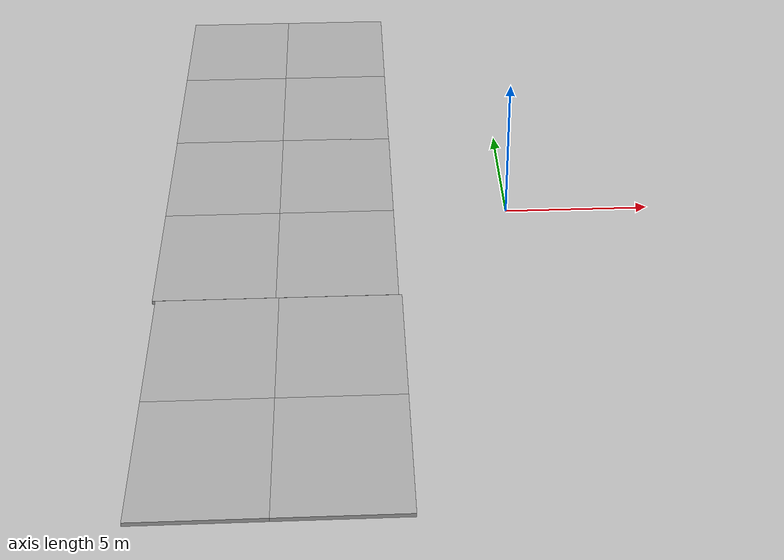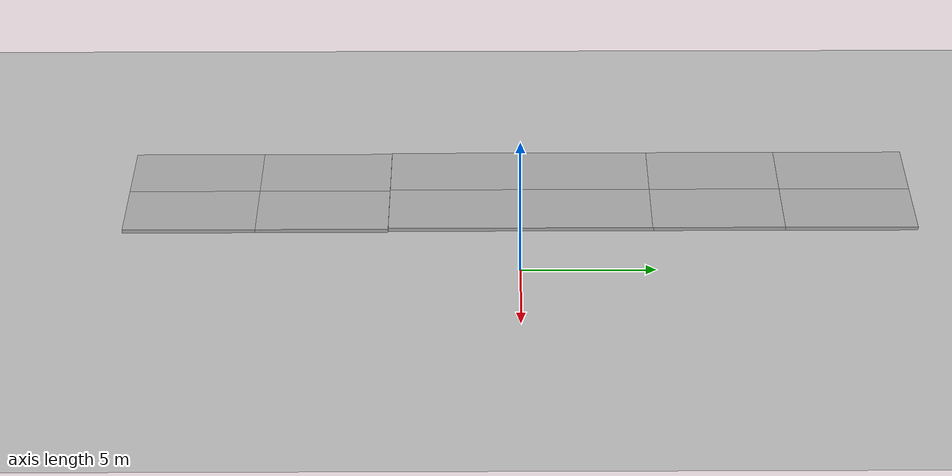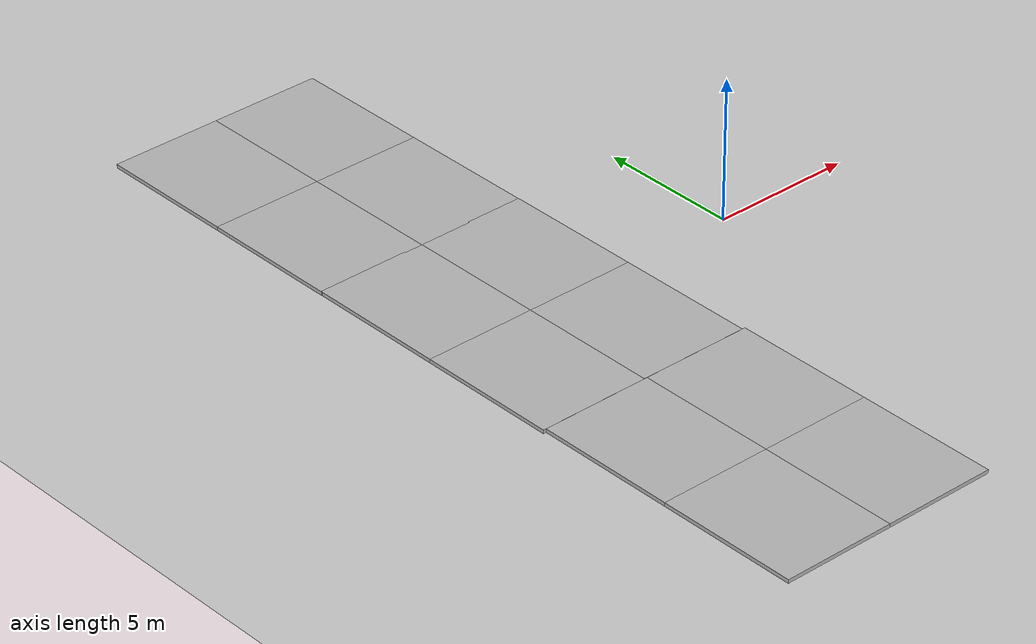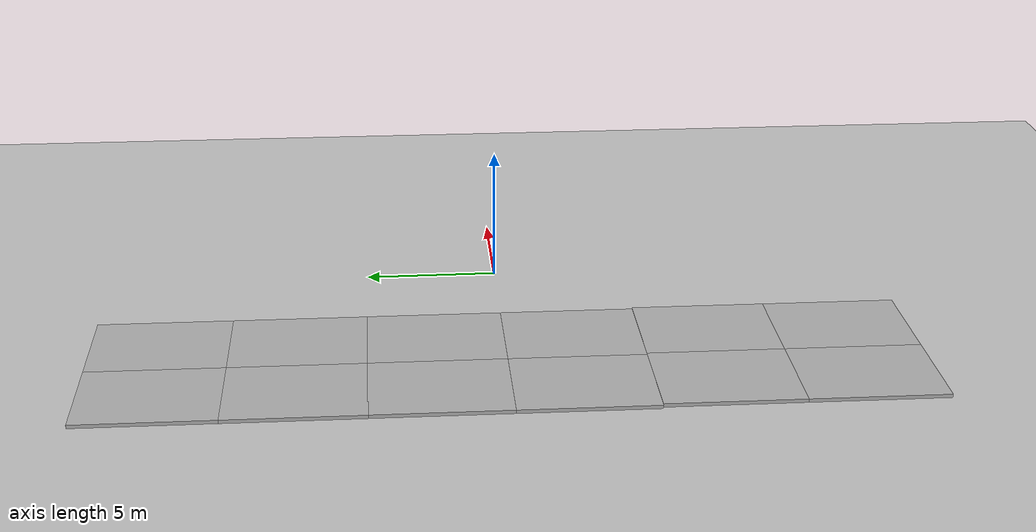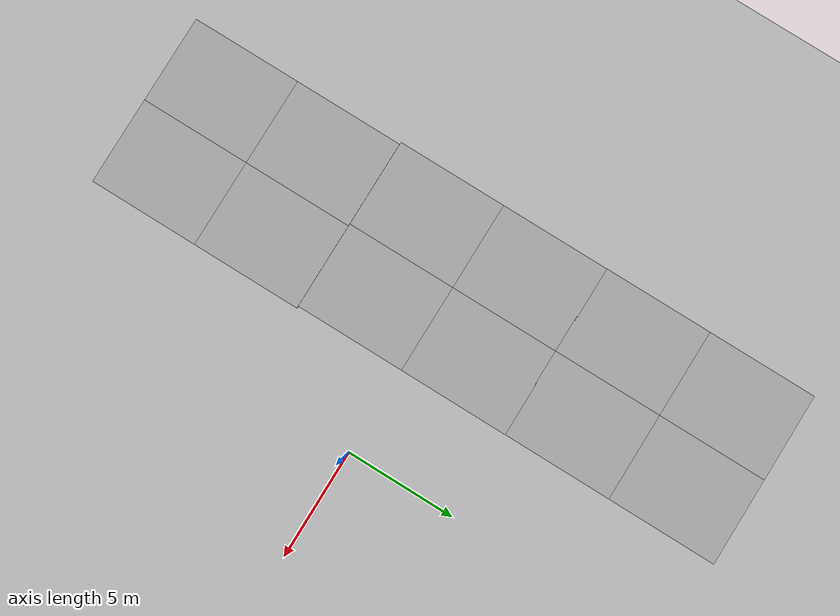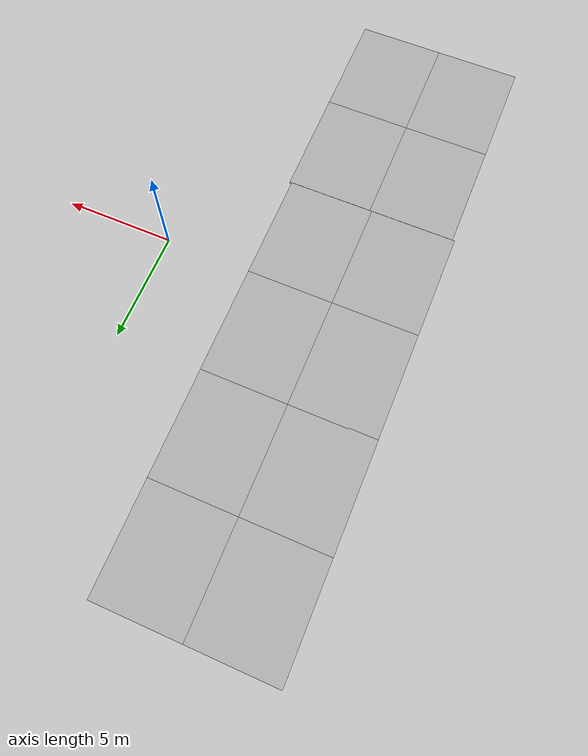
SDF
<sdf version="1.9">
 <world name="empty">
  <physics name="1ms" type="ignored">
   <max_step_size>0.001</max_step_size>
   <real_time_factor>1</real_time_factor>
   <real_time_update_rate>1000</real_time_update_rate>
  </physics>
  <plugin filename="gz-sim-physics-system" name="gz::sim::systems::Physics"/>
  <plugin filename="gz-sim-sensors-system" name="gz::sim::systems::Sensors">
   <render_engine>ogre2</render_engine>
  </plugin>
  <plugin filename="gz-sim-user-commands-system" name="gz::sim::systems::UserCommands"/>
  <plugin filename="gz-sim-scene-broadcaster-system" name="gz::sim::systems::SceneBroadcaster"/>
  <gravity>0 0 -9.8</gravity>
  <magnetic_field>6e-06 2.3e-05 -4.2e-05</magnetic_field>
  <atmosphere type="adiabatic"/>
  <scene><ambient>0.4 0.4 0.4 1</ambient><background>0.7 0.7 0.7 1</background><shadows>true</shadows></scene>
  <model name="ground_plane">
   <static>true</static>
   <link name="link">
    <collision name="collision">
     <geometry><plane><normal>0 0 1</normal><size>100 100</size></plane></geometry>
    </collision>
    <visual name="visual">
     <geometry><plane><normal>0 0 1</normal><size>100 100</size></plane></geometry>
     <material>
      <ambient>0.8 0.8 0.8 1</ambient>
      <diffuse>0.8 0.8 0.8 1</diffuse>
      <specular>0.8 0.8 0.8 1</specular>
     </material>
    </visual>
    <inertial>
     <mass>1</mass>
     <inertia><ixx>1</ixx><ixy>0</ixy><ixz>0</ixz><iyy>1</iyy><iyz>0</iyz><izz>1</izz></inertia>
    </inertial>
   </link>
  </model>
  <include><uri>model://Mud Box</uri><name>mud_box_1</name><pose>-7.98032 0.053884 0 0 -0 0</pose></include>
  <include><uri>model://Mud Box</uri><name>mud_box_2</name><pose>-7.8782 -9.9507 0 0 -0 0</pose></include>
  <include><uri>model://Mud Box</uri><name>mud_box_3</name><pose>-7.98798 10.0127 0 0 -0 0</pose></include>
  <light name="sun" type="directional">
   <pose>0 0 10 0 -0 0</pose>
   <intensity>1</intensity>
   <direction>-0.5 0.1 -0.9</direction>
   <diffuse>0.8 0.8 0.8 1</diffuse>
   <specular>0.2 0.2 0.2 1</specular>
   <attenuation>
    <range>1000</range>
    <linear>0.01</linear>
    <constant>0.90000000000000002</constant>
    <quadratic>0.001</quadratic>
   </attenuation>
   <spot><inner_angle>0</inner_angle><outer_angle>0</outer_angle><falloff>0</falloff></spot>
  </light>
 </world>
</sdf>

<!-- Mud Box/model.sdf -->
<sdf version="1.5">
  <model name="mud_box">
    <static>true</static>
    <link name="link">
      <collision name="collision">
        <geometry>
          <box>
            <size>8 10 0.2</size>
          </box>
        </geometry>
      </collision>
      <visual name="visual_1">
        <pose>-2 2.5 0 0 0 0</pose>
        <cast_shadows>false</cast_shadows>
        <geometry>
          <box>
            <size>4 5 0.2</size>
          </box>
        </geometry>
        <material>
          <script>
            <uri>model://Mud Box/materials/scripts</uri>
            <uri>model://Mud Box/materials/textures</uri>
            <name>vrc/mud</name>
          </script>
        </material>
      </visual>
      <visual name="visual_2">
        <pose>2 2.5 0 0 0 0</pose>
        <cast_shadows>false</cast_shadows>
        <geometry>
          <box>
            <size>4 5 0.2</size>
          </box>
        </geometry>
        <material>
          <script>
            <uri>model://Mud Box/materials/scripts</uri>
            <uri>model://Mud Box/materials/textures</uri>
            <name>vrc/mud</name>
          </script>
        </material>
      </visual>
      <visual name="visual_3">
        <pose>2 -2.5 0 0 0 0</pose>
        <cast_shadows>false</cast_shadows>
        <geometry>
          <box>
            <size>4 5 0.2</size>
          </box>
        </geometry>
        <material>
          <script>
            <uri>model://Mud Box/materials/scripts</uri>
            <uri>model://Mud Box/materials/textures</uri>
            <name>vrc/mud</name>
          </script>
        </material>
      </visual>
      <visual name="visual_4">
        <pose>-2 -2.5 0 0 0 0</pose>
        <cast_shadows>false</cast_shadows>
        <geometry>
          <box>
            <size>4 5 0.2</size>
          </box>
        </geometry>
        <material>
          <script>
            <uri>model://Mud Box/materials/scripts</uri>
            <uri>model://Mud Box/materials/textures</uri>
            <name>vrc/mud</name>
          </script>
        </material>
      </visual>
    </link>
  </model>
</sdf>
